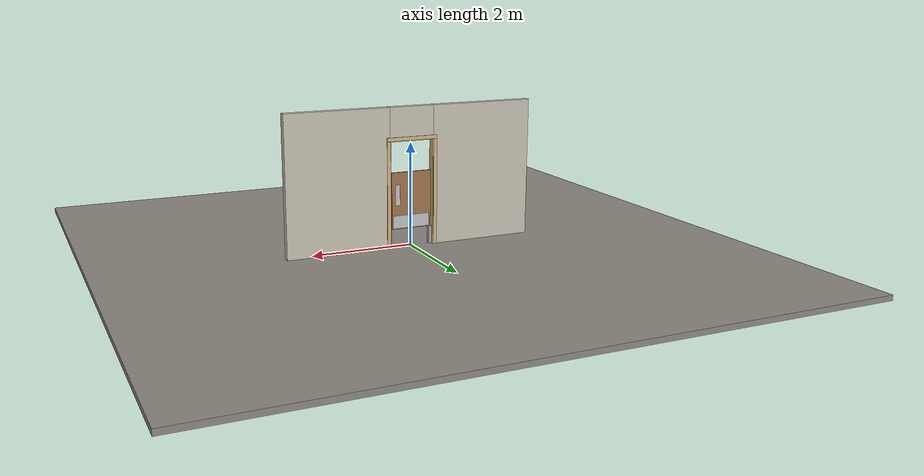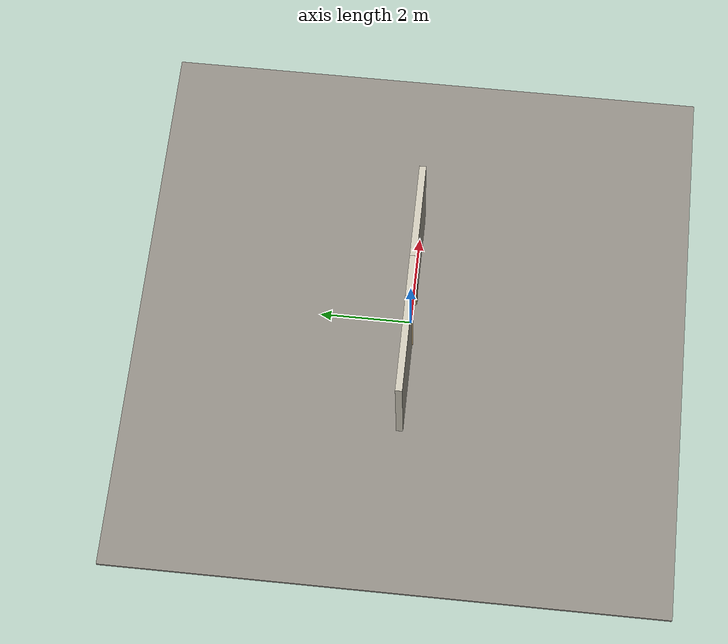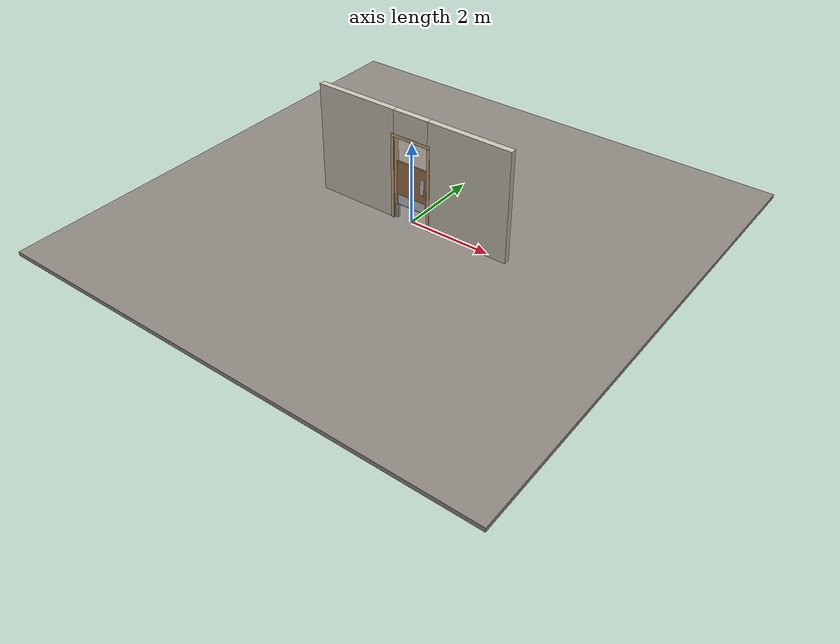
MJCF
<?xml version="1.0" ?>
<mujoco model="db0300_saloon_full">
  <compiler angle="radian" meshdir="../../hardware" texturedir="../../textures" autolimits="true" inertiafromgeom="false"/>
  <option timestep="0.002" integrator="implicitfast" cone="elliptic" impratio="10" noslip_iterations="3">
    <flag multiccd="enable"/>
  </option>
  <size memory="16M"/>
  <default>
    <geom condim="4" solref="0.005 1" solimp="0.95 0.99 0.001"/>
    <joint solreflimit="0.005 1" solimplimit="0.95 0.99 0.001"/>
    <tendon solreflimit="0.005 1"/>
    <equality solref="0.002 1"/>
  </default>
  <visual>
    <headlight ambient="0.4 0.4 0.4" diffuse="0.7 0.7 0.7" specular="0.2 0.2 0.2"/>
    <quality shadowsize="4096"/>
    <map znear="0.01" zfar="60"/>
  </visual>
  <asset>
    <material name="mat_floor" rgba="0.55 0.53 0.5 1" specular="0.2" shininess="0.15" reflectance="0"/>
    <material name="mat_wall" rgba="0.78 0.76 0.7 1" specular="0.2" shininess="0.1" reflectance="0"/>
    <material name="mat_frame" rgba="0.82 0.7 0.5 1" specular="0.2" shininess="0.45" reflectance="0"/>
    <material name="mat_leaf" rgba="0.62 0.45 0.3 1" specular="0.2" shininess="0.5" reflectance="0"/>
    <material name="mat_hinge" rgba="0.65 0.66 0.68 1" specular="0.74" shininess="0.5" reflectance="0.36"/>
    <material name="mat_op_stainless" rgba="0.75 0.76 0.77 1" specular="0.8" shininess="0.65" reflectance="0.4"/>
    <material name="mat_kick" rgba="0.75 0.76 0.77 1" specular="0.8" shininess="0.65" reflectance="0.4"/>
    <texture name="skybox" type="skybox" builtin="gradient" rgb1="0.6 0.7 0.85" rgb2="0.9 0.92 0.95" width="256" height="256"/>
  </asset>
  <worldbody>
    <light name="sun" pos="1.5 -2.5 4" dir="-0.3 0.5 -0.8" directional="true" diffuse="0.8 0.8 0.8" specular="0.3 0.3 0.3" castshadow="true"/>
    <light name="fill" pos="-1.5 2.5 3" dir="0.3 -0.5 -0.7" directional="true" diffuse="0.35 0.35 0.4" castshadow="false"/>
    <camera name="robot_view" pos="0 -2.546875 1.738125" xyaxes="1 0 0 0 0.26963 0.962964" fovy="52"/>
    <camera name="far_view" pos="0 2.546875 1.738125" xyaxes="-1 0 0 0 -0.26963 0.962964" fovy="52"/>
    <camera name="iso" pos="1.935625 -2.139375 2.145625" xyaxes="0.741536 0.670913 0 -0.242917 0.268487 0.932151" fovy="46"/>
    <camera name="detail_handle" pos="0.48 -0.8 1.28" xyaxes="0.97561 0.219512 0 -0.070934 0.315262 0.94635" fovy="38"/>
    <geom name="floor" type="box" size="6 6 0.05" pos="0 0 -0.05" material="mat_floor" group="0" contype="1" conaffinity="1" friction="0.8 0.005 0.0001" density="2400"/>
    <geom name="wall_left" type="box" size="1.02575 0.0725 1.35" pos="-1.47425 0 1.35" material="mat_wall" group="0" contype="1" conaffinity="1" friction="0.6 0.005 0.0001" density="800"/>
    <geom name="wall_right" type="box" size="1.02575 0.0725 1.35" pos="1.47425 0 1.35" material="mat_wall" group="0" contype="1" conaffinity="1" friction="0.6 0.005 0.0001" density="800"/>
    <geom name="wall_header" type="box" size="0.4485 0.0725 0.3155" pos="0 0 2.3845" material="mat_wall" group="0" contype="1" conaffinity="1" friction="0.6 0.005 0.0001" density="800"/>
    <geom name="jamb_hinge" type="box" size="0.0095 0.0725 1.025" pos="-0.439 0 1.025" material="mat_frame" group="0" contype="1" conaffinity="1" friction="0.6 0.005 0.0001" density="400"/>
    <geom name="jamb_strike" type="box" size="0.0095 0.0725 1.025" pos="0.439 0 1.025" material="mat_frame" group="0" contype="1" conaffinity="1" friction="0.6 0.005 0.0001" density="400"/>
    <geom name="stud_strike" type="box" size="0.015 0.0725 1.025" pos="0.4635 0 1.025" material="mat_wall" group="0" contype="1" conaffinity="1" friction="0.6 0.005 0.0001" density="500"/>
    <geom name="jamb_head" type="box" size="0.4635 0.0725 0.0095" pos="0.015 0 2.0595" material="mat_frame" group="0" contype="1" conaffinity="1" friction="0.6 0.005 0.0001" density="400"/>
    <geom name="head_stud" type="box" size="0.4635 0.0725 0.015" pos="0.015 0 2.084" material="mat_wall" group="0" contype="1" conaffinity="1" friction="0.6 0.005 0.0001" density="500"/>
    <geom name="casing_l_n" type="box" size="0.035 0.008 1.0345" pos="-0.4785 -0.0805 1.025" material="mat_frame" group="2" contype="0" conaffinity="0" density="400"/>
    <geom name="casing_r_n" type="box" size="0.035 0.008 1.0345" pos="0.4785 -0.0805 1.025" material="mat_frame" group="2" contype="0" conaffinity="0" density="400"/>
    <geom name="casing_h_n" type="box" size="0.5135 0.008 0.035" pos="0 -0.0805 2.099" material="mat_frame" group="2" contype="0" conaffinity="0" density="400"/>
    <geom name="casing_l_p" type="box" size="0.035 0.008 1.0345" pos="-0.4785 0.0805 1.025" material="mat_frame" group="2" contype="0" conaffinity="0" density="400"/>
    <geom name="casing_r_p" type="box" size="0.035 0.008 1.0345" pos="0.4785 0.0805 1.025" material="mat_frame" group="2" contype="0" conaffinity="0" density="400"/>
    <geom name="casing_h_p" type="box" size="0.5135 0.008 0.035" pos="0 0.0805 2.099" material="mat_frame" group="2" contype="0" conaffinity="0" density="400"/>
    <geom name="pivot_bottom_socket" type="box" size="0.035 0.035 0.179" pos="-0.406 0 0.169" material="mat_hinge" group="1" contype="0" conaffinity="0" density="7850"/>
    <site name="approach_point" pos="0 -1.5 0" quat="1 0 0 0" size="0.05" rgba="0.2 0.9 0.2 0.5" group="4"/>
    <site name="goal_point" pos="0 1.5 0" quat="1 0 0 0" size="0.05" rgba="0.2 0.9 0.2 0.5" group="4"/>
    <site name="door_plane_center" pos="0 0 1.025" quat="1 0 0 0" size="0.02" rgba="0.2 0.9 0.2 0.5" group="4"/>
    <body name="leaf" pos="-0.4295 0 0">
      <inertial pos="0.43273 0 0.833041" mass="23.91" quat="0.491815 -0.491815 0.508053 0.508053" diaginertia="1.27402223 2.569422994 3.83625127"/>
      <joint name="leaf_hinge" type="hinge" axis="0 0 1" pos="0.0235 0 0" limited="true" range="-1.570796 1.570796" damping="0.831371" frictionloss="0.844117" stiffness="5.2" springref="0" armature="0.02"/>
      <geom name="leaf_slab" type="box" size="0.4 0.0175 0.55" pos="0.4235 0 0.9" material="mat_leaf" group="0" contype="1" conaffinity="1" friction="0.4 0.005 0.0001" density="1"/>
      <geom name="pivot_bottom" type="cylinder" size="0.014 0.004" pos="0.0235 0 0.345" material="mat_hinge" group="1" contype="0" conaffinity="0" density="7850"/>
      <geom name="pivot_top" type="cylinder" size="0.014 0.004" pos="0.0235 0 1.454" material="mat_hinge" group="1" contype="0" conaffinity="0" density="7850"/>
      <geom name="leaf_push_plate_n" type="box" size="0.05 0.0008 0.2" pos="0.7035 -0.0183 1.01" material="mat_op_stainless" group="1" contype="0" conaffinity="0" density="7900"/>
      <geom name="leaf_push_plate_p" type="box" size="0.05 0.0008 0.2" pos="0.7035 0.0183 1.01" material="mat_op_stainless" group="1" contype="0" conaffinity="0" density="7900"/>
      <geom name="leaf_kick_n" type="box" size="0.37 0.0008 0.125" pos="0.4235 -0.0183 0.485" material="mat_kick" group="2" contype="0" conaffinity="0" density="7900"/>
      <geom name="leaf_kick_p" type="box" size="0.37 0.0008 0.125" pos="0.4235 0.0183 0.485" material="mat_kick" group="2" contype="0" conaffinity="0" density="7900"/>
      <site name="leaf_push_plate_push_n" pos="0.7035 -0.0175 1.01" quat="1 0 0 0" size="0.012" rgba="0.2 0.9 0.2 0.5" group="4"/>
      <site name="leaf_push_plate_push_p" pos="0.7035 0.0175 1.01" quat="1 0 0 0" size="0.012" rgba="0.2 0.9 0.2 0.5" group="4"/>
      <site name="leaf_push_site" pos="0.6235 -0.0175 1.01" quat="1 0 0 0" size="0.015" rgba="0.2 0.9 0.2 0.5" group="4"/>
    </body>
  </worldbody>
  <sensor>
    <jointpos name="leaf_hinge_pos" joint="leaf_hinge"/>
    <jointvel name="leaf_hinge_vel" joint="leaf_hinge"/>
  </sensor>
</mujoco>
